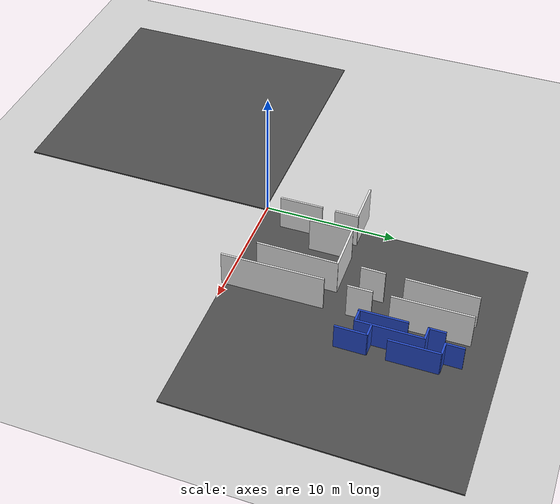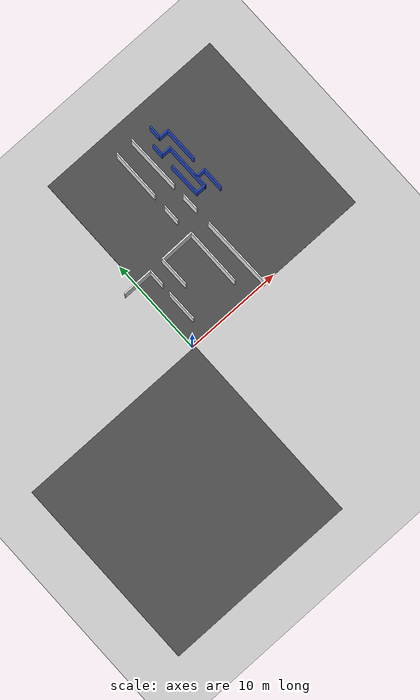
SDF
<sdf version="1.7">
 <world name="default">
  <model name="ground_plane">
   <static>1</static>
   <link name="link">
    <collision name="collision">
     <geometry><plane><normal>0 0 1</normal><size>100 100</size></plane></geometry>
     <surface><friction><ode><mu>100</mu><mu2>50</mu2></ode></friction></surface>
    </collision>
    <visual name="visual">
     <cast_shadows>0</cast_shadows>
     <geometry><plane><normal>0 0 1</normal><size>100 100</size></plane></geometry>
     <material>
      <script><uri>file://media/materials/scripts/gazebo.material</uri><name>Gazebo/Grey</name></script>
     </material>
    </visual>
    <velocity_decay><linear>0</linear><angular>0</angular></velocity_decay>
   </link>
  </model>
  <model name="asphalt_plane">
   <static>1</static>
   <link name="link">
    <collision name="collision"><geometry><box><size>20 20 0.1</size></box></geometry></collision>
    <visual name="visual">
     <cast_shadows>0</cast_shadows>
     <geometry><box><size>20 20 0.1</size></box></geometry>
     <material>
      <script>
       <uri>model://asphalt_plane/materials/scripts</uri>
       <uri>model://asphalt_plane/materials/textures</uri>
       <name>vrc/asphalt</name>
      </script>
     </material>
    </visual>
   </link>
   <pose>-9.73878 -10.1135 0 0 -0 0</pose>
  </model>
  <model name="asphalt_plane_2">
   <static>1</static>
   <link name="link">
    <collision name="collision"><geometry><box><size>20 20 0.1</size></box></geometry></collision>
    <visual name="visual">
     <cast_shadows>0</cast_shadows>
     <geometry><box><size>20 20 0.1</size></box></geometry>
     <material>
      <script>
       <uri>model://asphalt_plane/materials/scripts</uri>
       <uri>model://asphalt_plane/materials/textures</uri>
       <name>vrc/asphalt</name>
      </script>
     </material>
    </visual>
   </link>
   <pose>10.0797 9.93952 0 0 -0 0</pose>
  </model>
  <model name="white_wall1_clone_clone">
   <link name="link">
    <inertial>
     <mass>1</mass>
     <inertia>
      <ixx>0.166667</ixx>
      <ixy>0</ixy>
      <ixz>0</ixz>
      <iyy>0.166667</iyy>
      <iyz>0</iyz>
      <izz>0.166667</izz>
     </inertia>
    </inertial>
    <visual name="visual">
     <geometry><box><size>7.516 0.139088 2.78993</size></box></geometry>
     <material>
      <script><name>Gazebo/White</name><uri>file://media/materials/scripts/gazebo.material</uri></script>
      <shader type="vertex"><normal_map>__default__</normal_map></shader>
      <ambient>1 1 1 1</ambient>
      <diffuse>1 1 1 1</diffuse>
      <specular>0 0 0 1</specular>
      <emissive>0 0 0 1</emissive>
     </material>
    </visual>
    <collision name="collision">
     <geometry><box><size>7.516 0.139088 2.78993</size></box></geometry>
     <surface>
      <friction>
       <ode><mu>1</mu><mu2>1</mu2><fdir1>0 0 0</fdir1><slip1>0</slip1><slip2>0</slip2></ode>
       <torsional>
        <coefficient>1</coefficient>
        <patch_radius>0</patch_radius>
        <surface_radius>0</surface_radius>
        <use_patch_radius>1</use_patch_radius>
        <ode><slip>0</slip></ode>
       </torsional>
      </friction>
      <bounce><restitution_coefficient>0</restitution_coefficient><threshold>1e+06</threshold></bounce>
      <contact>
       <collide_without_contact>0</collide_without_contact>
       <collide_without_contact_bitmask>1</collide_without_contact_bitmask>
       <collide_bitmask>1</collide_bitmask>
       <ode>
        <soft_cfm>0</soft_cfm>
        <soft_erp>0.2</soft_erp>
        <kp>1e+13</kp>
        <kd>1</kd>
        <max_vel>0.01</max_vel>
        <min_depth>0</min_depth>
       </ode>
       <bullet>
        <split_impulse>1</split_impulse>
        <split_impulse_penetration_threshold>-0.01</split_impulse_penetration_threshold>
        <soft_cfm>0</soft_cfm>
        <soft_erp>0.2</soft_erp>
        <kp>1e+13</kp>
        <kd>1</kd>
       </bullet>
      </contact>
     </surface>
    </collision>
   </link>
   <static>1</static>
   <pose>8.6384 3.53143 1.43994 -4e-06 -1e-06 -1.55395</pose>
  </model>
  <model name="white_wall14_clone">
   <link name="link">
    <inertial>
     <mass>1</mass>
     <inertia>
      <ixx>0.166667</ixx>
      <ixy>0</ixy>
      <ixz>0</ixz>
      <iyy>0.166667</iyy>
      <iyz>0</iyz>
      <izz>0.166667</izz>
     </inertia>
    </inertial>
    <visual name="visual">
     <geometry><box><size>5.71848 0.139088 2.78993</size></box></geometry>
     <material>
      <script><name>Gazebo/White</name><uri>file://media/materials/scripts/gazebo.material</uri></script>
      <shader type="vertex"><normal_map>__default__</normal_map></shader>
      <ambient>1 1 1 1</ambient>
      <diffuse>1 1 1 1</diffuse>
      <specular>0 0 0 1</specular>
      <emissive>0 0 0 1</emissive>
     </material>
    </visual>
    <collision name="collision">
     <geometry><box><size>5.71848 0.139088 2.78993</size></box></geometry>
     <surface>
      <friction>
       <ode><mu>1</mu><mu2>1</mu2><fdir1>0 0 0</fdir1><slip1>0</slip1><slip2>0</slip2></ode>
       <torsional>
        <coefficient>1</coefficient>
        <patch_radius>0</patch_radius>
        <surface_radius>0</surface_radius>
        <use_patch_radius>1</use_patch_radius>
        <ode><slip>0</slip></ode>
       </torsional>
      </friction>
      <bounce><restitution_coefficient>0</restitution_coefficient><threshold>1e+06</threshold></bounce>
      <contact>
       <collide_without_contact>0</collide_without_contact>
       <collide_without_contact_bitmask>1</collide_without_contact_bitmask>
       <collide_bitmask>1</collide_bitmask>
       <ode>
        <soft_cfm>0</soft_cfm>
        <soft_erp>0.2</soft_erp>
        <kp>1e+13</kp>
        <kd>1</kd>
        <max_vel>0.01</max_vel>
        <min_depth>0</min_depth>
       </ode>
       <bullet>
        <split_impulse>1</split_impulse>
        <split_impulse_penetration_threshold>-0.01</split_impulse_penetration_threshold>
        <soft_cfm>0</soft_cfm>
        <soft_erp>0.2</soft_erp>
        <kp>1e+13</kp>
        <kd>1</kd>
       </bullet>
      </contact>
     </surface>
    </collision>
   </link>
   <static>1</static>
   <pose>8.48733 14.7914 1.43994 -4e-06 -1e-06 -1.55521</pose>
  </model>
  <model name="white_wall3_clone_clone_1_clone_0_clone_clone">
   <link name="link">
    <inertial>
     <mass>1</mass>
     <inertia>
      <ixx>0.166667</ixx>
      <ixy>0</ixy>
      <ixz>0</ixz>
      <iyy>0.166667</iyy>
      <iyz>0</iyz>
      <izz>0.166667</izz>
     </inertia>
    </inertial>
    <visual name="visual">
     <geometry><box><size>1.77743 0.139088 2.78993</size></box></geometry>
     <material>
      <script><name>Gazebo/White</name><uri>file://media/materials/scripts/gazebo.material</uri></script>
      <shader type="vertex"><normal_map>__default__</normal_map></shader>
      <ambient>1 1 1 1</ambient>
      <diffuse>1 1 1 1</diffuse>
      <specular>0 0 0 1</specular>
      <emissive>0 0 0 1</emissive>
     </material>
    </visual>
    <collision name="collision">
     <geometry><box><size>1.77743 0.139088 2.78993</size></box></geometry>
     <surface>
      <friction>
       <ode><mu>1</mu><mu2>1</mu2><fdir1>0 0 0</fdir1><slip1>0</slip1><slip2>0</slip2></ode>
       <torsional>
        <coefficient>1</coefficient>
        <patch_radius>0</patch_radius>
        <surface_radius>0</surface_radius>
        <use_patch_radius>1</use_patch_radius>
        <ode><slip>0</slip></ode>
       </torsional>
      </friction>
      <bounce><restitution_coefficient>0</restitution_coefficient><threshold>1e+06</threshold></bounce>
      <contact>
       <collide_without_contact>0</collide_without_contact>
       <collide_without_contact_bitmask>1</collide_without_contact_bitmask>
       <collide_bitmask>1</collide_bitmask>
       <ode>
        <soft_cfm>0</soft_cfm>
        <soft_erp>0.2</soft_erp>
        <kp>1e+13</kp>
        <kd>1</kd>
        <max_vel>0.01</max_vel>
        <min_depth>0</min_depth>
       </ode>
       <bullet>
        <split_impulse>1</split_impulse>
        <split_impulse_penetration_threshold>-0.01</split_impulse_penetration_threshold>
        <soft_cfm>0</soft_cfm>
        <soft_erp>0.2</soft_erp>
        <kp>1e+13</kp>
        <kd>1</kd>
       </bullet>
      </contact>
     </surface>
    </collision>
   </link>
   <static>1</static>
   <pose>8.5689 9.81142 1.43995 -4e-06 -1e-06 -1.5551</pose>
  </model>
  <model name="white_wall19_clone_0">
   <link name="link">
    <inertial>
     <mass>1</mass>
     <inertia>
      <ixx>0.166667</ixx>
      <ixy>0</ixy>
      <ixz>0</ixz>
      <iyy>0.166667</iyy>
      <iyz>0</iyz>
      <izz>0.166667</izz>
     </inertia>
    </inertial>
    <visual name="visual">
     <geometry><box><size>5.22248 0.139088 2.78993</size></box></geometry>
     <material>
      <script><name>Gazebo/White</name><uri>file://media/materials/scripts/gazebo.material</uri></script>
      <shader type="vertex"><normal_map>__default__</normal_map></shader>
      <ambient>1 1 1 1</ambient>
      <diffuse>1 1 1 1</diffuse>
      <specular>0 0 0 1</specular>
      <emissive>0 0 0 1</emissive>
     </material>
    </visual>
    <collision name="collision">
     <geometry><box><size>5.22248 0.139088 2.78993</size></box></geometry>
     <surface>
      <friction>
       <ode><mu>1</mu><mu2>1</mu2><fdir1>0 0 0</fdir1><slip1>0</slip1><slip2>0</slip2></ode>
       <torsional>
        <coefficient>1</coefficient>
        <patch_radius>0</patch_radius>
        <surface_radius>0</surface_radius>
        <use_patch_radius>1</use_patch_radius>
        <ode><slip>0</slip></ode>
       </torsional>
      </friction>
      <bounce><restitution_coefficient>0</restitution_coefficient><threshold>1e+06</threshold></bounce>
      <contact>
       <collide_without_contact>0</collide_without_contact>
       <collide_without_contact_bitmask>1</collide_without_contact_bitmask>
       <collide_bitmask>1</collide_bitmask>
       <ode>
        <soft_cfm>0</soft_cfm>
        <soft_erp>0.2</soft_erp>
        <kp>1e+13</kp>
        <kd>1</kd>
        <max_vel>0.01</max_vel>
        <min_depth>0</min_depth>
       </ode>
       <bullet>
        <split_impulse>1</split_impulse>
        <split_impulse_penetration_threshold>-0.01</split_impulse_penetration_threshold>
        <soft_cfm>0</soft_cfm>
        <soft_erp>0.2</soft_erp>
        <kp>1e+13</kp>
        <kd>1</kd>
       </bullet>
      </contact>
     </surface>
    </collision>
   </link>
   <static>1</static>
   <pose>6.59059 14.9958 1.43998 4e-06 1e-06 1.56978</pose>
  </model>
  <model name="white_wall3_clone_clone_2_clone_clone">
   <link name="link">
    <inertial>
     <mass>1</mass>
     <inertia>
      <ixx>0.166667</ixx>
      <ixy>0</ixy>
      <ixz>0</ixz>
      <iyy>0.166667</iyy>
      <iyz>0</iyz>
      <izz>0.166667</izz>
     </inertia>
    </inertial>
    <visual name="visual">
     <geometry><box><size>1.77743 0.139088 2.78993</size></box></geometry>
     <material>
      <script><name>Gazebo/White</name><uri>file://media/materials/scripts/gazebo.material</uri></script>
      <shader type="vertex"><normal_map>__default__</normal_map></shader>
      <ambient>1 1 1 1</ambient>
      <diffuse>1 1 1 1</diffuse>
      <specular>0 0 0 1</specular>
      <emissive>0 0 0 1</emissive>
     </material>
    </visual>
    <collision name="collision">
     <geometry><box><size>1.77743 0.139088 2.78993</size></box></geometry>
     <surface>
      <friction>
       <ode><mu>1</mu><mu2>1</mu2><fdir1>0 0 0</fdir1><slip1>0</slip1><slip2>0</slip2></ode>
       <torsional>
        <coefficient>1</coefficient>
        <patch_radius>0</patch_radius>
        <surface_radius>0</surface_radius>
        <use_patch_radius>1</use_patch_radius>
        <ode><slip>0</slip></ode>
       </torsional>
      </friction>
      <bounce><restitution_coefficient>0</restitution_coefficient><threshold>1e+06</threshold></bounce>
      <contact>
       <collide_without_contact>0</collide_without_contact>
       <collide_without_contact_bitmask>1</collide_without_contact_bitmask>
       <collide_bitmask>1</collide_bitmask>
       <ode>
        <soft_cfm>0</soft_cfm>
        <soft_erp>0.2</soft_erp>
        <kp>1e+13</kp>
        <kd>1</kd>
        <max_vel>0.01</max_vel>
        <min_depth>0</min_depth>
       </ode>
       <bullet>
        <split_impulse>1</split_impulse>
        <split_impulse_penetration_threshold>-0.01</split_impulse_penetration_threshold>
        <soft_cfm>0</soft_cfm>
        <soft_erp>0.2</soft_erp>
        <kp>1e+13</kp>
        <kd>1</kd>
       </bullet>
      </contact>
     </surface>
    </collision>
   </link>
   <static>1</static>
   <pose>6.5769 10.1521 1.43995 4e-06 1e-06 1.56402</pose>
  </model>
  <model name="white_wall2_clone_clone_clone_clone_clone_clone_clone">
   <link name="link">
    <inertial>
     <mass>1</mass>
     <inertia>
      <ixx>0.166667</ixx>
      <ixy>0</ixy>
      <ixz>0</ixz>
      <iyy>0.166667</iyy>
      <iyz>0</iyz>
      <izz>0.166667</izz>
     </inertia>
    </inertial>
    <visual name="visual">
     <geometry><box><size>3.22688 0.139088 2.78993</size></box></geometry>
     <material>
      <script><name>Gazebo/White</name><uri>file://media/materials/scripts/gazebo.material</uri></script>
      <shader type="vertex"><normal_map>__default__</normal_map></shader>
      <ambient>1 1 1 1</ambient>
      <diffuse>1 1 1 1</diffuse>
      <specular>0 0 0 1</specular>
      <emissive>0 0 0 1</emissive>
     </material>
    </visual>
    <collision name="collision">
     <geometry><box><size>3.22688 0.139088 2.78993</size></box></geometry>
     <surface>
      <friction>
       <ode><mu>1</mu><mu2>1</mu2><fdir1>0 0 0</fdir1><slip1>0</slip1><slip2>0</slip2></ode>
       <torsional>
        <coefficient>1</coefficient>
        <patch_radius>0</patch_radius>
        <surface_radius>0</surface_radius>
        <use_patch_radius>1</use_patch_radius>
        <ode><slip>0</slip></ode>
       </torsional>
      </friction>
      <bounce><restitution_coefficient>0</restitution_coefficient><threshold>1e+06</threshold></bounce>
      <contact>
       <collide_without_contact>0</collide_without_contact>
       <collide_without_contact_bitmask>1</collide_without_contact_bitmask>
       <collide_bitmask>1</collide_bitmask>
       <ode>
        <soft_cfm>0</soft_cfm>
        <soft_erp>0.2</soft_erp>
        <kp>1e+13</kp>
        <kd>1</kd>
        <max_vel>0.01</max_vel>
        <min_depth>0</min_depth>
       </ode>
       <bullet>
        <split_impulse>1</split_impulse>
        <split_impulse_penetration_threshold>-0.01</split_impulse_penetration_threshold>
        <soft_cfm>0</soft_cfm>
        <soft_erp>0.2</soft_erp>
        <kp>1e+13</kp>
        <kd>1</kd>
       </bullet>
      </contact>
     </surface>
    </collision>
   </link>
   <static>1</static>
   <pose>0.098009 7.51806 1.43995 -1e-06 4e-06 0.004652</pose>
  </model>
  <model name="white_wall3_clone_clone_2_clone_clone_clone">
   <link name="link">
    <inertial>
     <mass>1</mass>
     <inertia>
      <ixx>0.166667</ixx>
      <ixy>0</ixy>
      <ixz>0</ixz>
      <iyy>0.166667</iyy>
      <iyz>0</iyz>
      <izz>0.166667</izz>
     </inertia>
    </inertial>
    <visual name="visual">
     <geometry><box><size>1.77743 0.139088 2.78993</size></box></geometry>
     <material>
      <script><name>Gazebo/White</name><uri>file://media/materials/scripts/gazebo.material</uri></script>
      <shader type="vertex"><normal_map>__default__</normal_map></shader>
      <ambient>1 1 1 1</ambient>
      <diffuse>1 1 1 1</diffuse>
      <specular>0 0 0 1</specular>
      <emissive>0 0 0 1</emissive>
     </material>
    </visual>
    <collision name="collision">
     <geometry><box><size>1.77743 0.139088 2.78993</size></box></geometry>
     <surface>
      <friction>
       <ode><mu>1</mu><mu2>1</mu2><fdir1>0 0 0</fdir1><slip1>0</slip1><slip2>0</slip2></ode>
       <torsional>
        <coefficient>1</coefficient>
        <patch_radius>0</patch_radius>
        <surface_radius>0</surface_radius>
        <use_patch_radius>1</use_patch_radius>
        <ode><slip>0</slip></ode>
       </torsional>
      </friction>
      <bounce><restitution_coefficient>0</restitution_coefficient><threshold>1e+06</threshold></bounce>
      <contact>
       <collide_without_contact>0</collide_without_contact>
       <collide_without_contact_bitmask>1</collide_without_contact_bitmask>
       <collide_bitmask>1</collide_bitmask>
       <ode>
        <soft_cfm>0</soft_cfm>
        <soft_erp>0.2</soft_erp>
        <kp>1e+13</kp>
        <kd>1</kd>
        <max_vel>0.01</max_vel>
        <min_depth>0</min_depth>
       </ode>
       <bullet>
        <split_impulse>1</split_impulse>
        <split_impulse_penetration_threshold>-0.01</split_impulse_penetration_threshold>
        <soft_cfm>0</soft_cfm>
        <soft_erp>0.2</soft_erp>
        <kp>1e+13</kp>
        <kd>1</kd>
       </bullet>
      </contact>
     </surface>
    </collision>
   </link>
   <static>1</static>
   <pose>1.65799 6.7128 1.43995 4e-06 1e-06 1.56402</pose>
  </model>
  <model name="white_wall2_clone_clone_clone_clone_0">
   <link name="link">
    <inertial>
     <mass>1</mass>
     <inertia>
      <ixx>0.166667</ixx>
      <ixy>0</ixy>
      <ixz>0</ixz>
      <iyy>0.166667</iyy>
      <iyz>0</iyz>
      <izz>0.166667</izz>
     </inertia>
    </inertial>
    <visual name="visual">
     <geometry><box><size>3.22688 0.139088 2.78993</size></box></geometry>
     <material>
      <script><name>Gazebo/White</name><uri>file://media/materials/scripts/gazebo.material</uri></script>
      <shader type="vertex"><normal_map>__default__</normal_map></shader>
      <ambient>1 1 1 1</ambient>
      <diffuse>1 1 1 1</diffuse>
      <specular>0 0 0 1</specular>
      <emissive>0 0 0 1</emissive>
     </material>
    </visual>
    <collision name="collision">
     <geometry><box><size>3.22688 0.139088 2.78993</size></box></geometry>
     <surface>
      <friction>
       <ode><mu>1</mu><mu2>1</mu2><fdir1>0 0 0</fdir1><slip1>0</slip1><slip2>0</slip2></ode>
       <torsional>
        <coefficient>1</coefficient>
        <patch_radius>0</patch_radius>
        <surface_radius>0</surface_radius>
        <use_patch_radius>1</use_patch_radius>
        <ode><slip>0</slip></ode>
       </torsional>
      </friction>
      <bounce><restitution_coefficient>0</restitution_coefficient><threshold>1e+06</threshold></bounce>
      <contact>
       <collide_without_contact>0</collide_without_contact>
       <collide_without_contact_bitmask>1</collide_without_contact_bitmask>
       <collide_bitmask>1</collide_bitmask>
       <ode>
        <soft_cfm>0</soft_cfm>
        <soft_erp>0.2</soft_erp>
        <kp>1e+13</kp>
        <kd>1</kd>
        <max_vel>0.01</max_vel>
        <min_depth>0</min_depth>
       </ode>
       <bullet>
        <split_impulse>1</split_impulse>
        <split_impulse_penetration_threshold>-0.01</split_impulse_penetration_threshold>
        <soft_cfm>0</soft_cfm>
        <soft_erp>0.2</soft_erp>
        <kp>1e+13</kp>
        <kd>1</kd>
       </bullet>
      </contact>
     </surface>
    </collision>
   </link>
   <static>1</static>
   <pose>1.63251 3.24781 1.43995 4e-06 1e-06 1.57814</pose>
  </model>
  <model name="white_wall2_clone_clone_clone_clone_0_clone">
   <link name="link">
    <inertial>
     <mass>1</mass>
     <inertia>
      <ixx>0.166667</ixx>
      <ixy>0</ixy>
      <ixz>0</ixz>
      <iyy>0.166667</iyy>
      <iyz>0</iyz>
      <izz>0.166667</izz>
     </inertia>
    </inertial>
    <visual name="visual">
     <geometry><box><size>3.22688 0.139088 2.78993</size></box></geometry>
     <material>
      <script><name>Gazebo/White</name><uri>file://media/materials/scripts/gazebo.material</uri></script>
      <shader type="vertex"><normal_map>__default__</normal_map></shader>
      <ambient>1 1 1 1</ambient>
      <diffuse>1 1 1 1</diffuse>
      <specular>0 0 0 1</specular>
      <emissive>0 0 0 1</emissive>
     </material>
    </visual>
    <collision name="collision">
     <geometry><box><size>3.22688 0.139088 2.78993</size></box></geometry>
     <surface>
      <friction>
       <ode><mu>1</mu><mu2>1</mu2><fdir1>0 0 0</fdir1><slip1>0</slip1><slip2>0</slip2></ode>
       <torsional>
        <coefficient>1</coefficient>
        <patch_radius>0</patch_radius>
        <surface_radius>0</surface_radius>
        <use_patch_radius>1</use_patch_radius>
        <ode><slip>0</slip></ode>
       </torsional>
      </friction>
      <bounce><restitution_coefficient>0</restitution_coefficient><threshold>1e+06</threshold></bounce>
      <contact>
       <collide_without_contact>0</collide_without_contact>
       <collide_without_contact_bitmask>1</collide_without_contact_bitmask>
       <collide_bitmask>1</collide_bitmask>
       <ode>
        <soft_cfm>0</soft_cfm>
        <soft_erp>0.2</soft_erp>
        <kp>1e+13</kp>
        <kd>1</kd>
        <max_vel>0.01</max_vel>
        <min_depth>0</min_depth>
       </ode>
       <bullet>
        <split_impulse>1</split_impulse>
        <split_impulse_penetration_threshold>-0.01</split_impulse_penetration_threshold>
        <soft_cfm>0</soft_cfm>
        <soft_erp>0.2</soft_erp>
        <kp>1e+13</kp>
        <kd>1</kd>
       </bullet>
      </contact>
     </surface>
    </collision>
   </link>
   <static>1</static>
   <pose>3.21284 6.04856 1.43995 4e-06 1e-06 1.57814</pose>
  </model>
  <model name="white_wall6_clone_clone_clone_0_clone_0">
   <link name="link">
    <inertial>
     <mass>1</mass>
     <inertia>
      <ixx>0.166667</ixx>
      <ixy>0</ixy>
      <ixz>0</ixz>
      <iyy>0.166667</iyy>
      <iyz>0</iyz>
      <izz>0.166667</izz>
     </inertia>
    </inertial>
    <visual name="visual">
     <geometry><box><size>6.01508 0.139088 2.78993</size></box></geometry>
     <material>
      <script><name>Gazebo/White</name><uri>file://media/materials/scripts/gazebo.material</uri></script>
      <shader type="vertex"><normal_map>__default__</normal_map></shader>
      <ambient>1 1 1 1</ambient>
      <diffuse>1 1 1 1</diffuse>
      <specular>0 0 0 1</specular>
      <emissive>0 0 0 1</emissive>
     </material>
    </visual>
    <collision name="collision">
     <geometry><box><size>6.01508 0.139088 2.78993</size></box></geometry>
     <surface>
      <friction>
       <ode><mu>1</mu><mu2>1</mu2><fdir1>0 0 0</fdir1><slip1>0</slip1><slip2>0</slip2></ode>
       <torsional>
        <coefficient>1</coefficient>
        <patch_radius>0</patch_radius>
        <surface_radius>0</surface_radius>
        <use_patch_radius>1</use_patch_radius>
        <ode><slip>0</slip></ode>
       </torsional>
      </friction>
      <bounce><restitution_coefficient>0</restitution_coefficient><threshold>1e+06</threshold></bounce>
      <contact>
       <collide_without_contact>0</collide_without_contact>
       <collide_without_contact_bitmask>1</collide_without_contact_bitmask>
       <collide_bitmask>1</collide_bitmask>
       <ode>
        <soft_cfm>0</soft_cfm>
        <soft_erp>0.2</soft_erp>
        <kp>1e+13</kp>
        <kd>1</kd>
        <max_vel>0.01</max_vel>
        <min_depth>0</min_depth>
       </ode>
       <bullet>
        <split_impulse>1</split_impulse>
        <split_impulse_penetration_threshold>-0.01</split_impulse_penetration_threshold>
        <soft_cfm>0</soft_cfm>
        <soft_erp>0.2</soft_erp>
        <kp>1e+13</kp>
        <kd>1</kd>
       </bullet>
      </contact>
     </surface>
    </collision>
   </link>
   <static>1</static>
   <pose>6.752 4.70157 1.43998 4e-06 1e-06 1.56978</pose>
  </model>
  <model name="white_wall26">
   <link name="link">
    <inertial>
     <mass>1</mass>
     <inertia>
      <ixx>0.166667</ixx>
      <ixy>0</ixy>
      <ixz>0</ixz>
      <iyy>0.166667</iyy>
      <iyz>0</iyz>
      <izz>0.166667</izz>
     </inertia>
    </inertial>
    <visual name="visual">
     <geometry><box><size>3.67675 0.139088 2.78993</size></box></geometry>
     <material>
      <script><name>Gazebo/White</name><uri>file://media/materials/scripts/gazebo.material</uri></script>
      <shader type="vertex"><normal_map>__default__</normal_map></shader>
      <ambient>1 1 1 1</ambient>
      <diffuse>1 1 1 1</diffuse>
      <specular>0 0 0 1</specular>
      <emissive>0 0 0 1</emissive>
     </material>
    </visual>
    <collision name="collision">
     <geometry><box><size>3.67675 0.139088 2.78993</size></box></geometry>
     <surface>
      <friction>
       <ode><mu>1</mu><mu2>1</mu2><fdir1>0 0 0</fdir1><slip1>0</slip1><slip2>0</slip2></ode>
       <torsional>
        <coefficient>1</coefficient>
        <patch_radius>0</patch_radius>
        <surface_radius>0</surface_radius>
        <use_patch_radius>1</use_patch_radius>
        <ode><slip>0</slip></ode>
       </torsional>
      </friction>
      <bounce><restitution_coefficient>0</restitution_coefficient><threshold>1e+06</threshold></bounce>
      <contact>
       <collide_without_contact>0</collide_without_contact>
       <collide_without_contact_bitmask>1</collide_without_contact_bitmask>
       <collide_bitmask>1</collide_bitmask>
       <ode>
        <soft_cfm>0</soft_cfm>
        <soft_erp>0.2</soft_erp>
        <kp>1e+13</kp>
        <kd>1</kd>
        <max_vel>0.01</max_vel>
        <min_depth>0</min_depth>
       </ode>
       <bullet>
        <split_impulse>1</split_impulse>
        <split_impulse_penetration_threshold>-0.01</split_impulse_penetration_threshold>
        <soft_cfm>0</soft_cfm>
        <soft_erp>0.2</soft_erp>
        <kp>1e+13</kp>
        <kd>1</kd>
       </bullet>
      </contact>
     </surface>
    </collision>
   </link>
   <static>1</static>
   <pose>4.98186 7.62178 1.43999 1e-06 -4e-06 -3.1252</pose>
  </model>
  <model name="blue_wall_2_0_clone_0_clone_clone_clone_clone">
   <link name="link">
    <inertial>
     <mass>1.23974</mass>
     <inertia>
      <ixx>1.75708</ixx>
      <ixy>0</ixy>
      <ixz>0</ixz>
      <iyy>0.935051</iyy>
      <iyz>0</iyz>
      <izz>0.826375</izz>
     </inertia>
    </inertial>
    <visual name="visual">
     <geometry><box><size>0.145074 2.28839 3.00495</size></box></geometry>
     <material>
      <script><name>Gazebo/Blue</name><uri>file://media/materials/scripts/gazebo.material</uri></script>
      <shader type="vertex"><normal_map>__default__</normal_map></shader>
      <ambient>0 0 1 1</ambient>
      <diffuse>0 0 1 1</diffuse>
      <specular>0.1 0.1 0.1 1</specular>
      <emissive>0 0 0 1</emissive>
     </material>
    </visual>
    <collision name="collision">
     <geometry><box><size>0.145074 2.28839 3.00495</size></box></geometry>
     <surface>
      <friction>
       <ode><mu>1</mu><mu2>1</mu2><fdir1>0 0 0</fdir1><slip1>0</slip1><slip2>0</slip2></ode>
       <torsional>
        <coefficient>1</coefficient>
        <patch_radius>0</patch_radius>
        <surface_radius>0</surface_radius>
        <use_patch_radius>1</use_patch_radius>
        <ode><slip>0</slip></ode>
       </torsional>
      </friction>
      <bounce><restitution_coefficient>0</restitution_coefficient><threshold>1e+06</threshold></bounce>
      <contact>
       <collide_without_contact>0</collide_without_contact>
       <collide_without_contact_bitmask>1</collide_without_contact_bitmask>
       <collide_bitmask>1</collide_bitmask>
       <ode>
        <soft_cfm>0</soft_cfm>
        <soft_erp>0.2</soft_erp>
        <kp>1e+13</kp>
        <kd>1</kd>
        <max_vel>0.01</max_vel>
        <min_depth>0</min_depth>
       </ode>
       <bullet>
        <split_impulse>1</split_impulse>
        <split_impulse_penetration_threshold>-0.01</split_impulse_penetration_threshold>
        <soft_cfm>0</soft_cfm>
        <soft_erp>0.2</soft_erp>
        <kp>1e+13</kp>
        <kd>1</kd>
       </bullet>
      </contact>
     </surface>
    </collision>
   </link>
   <static>1</static>
   <pose>11.638 10.1483 0.5 0 -0 0</pose>
  </model>
  <model name="blue_wall_11_clone_clone">
   <link name="link">
    <inertial>
     <mass>1.23974</mass>
     <inertia>
      <ixx>1.75708</ixx>
      <ixy>0</ixy>
      <ixz>0</ixz>
      <iyy>0.935051</iyy>
      <iyz>0</iyz>
      <izz>0.826375</izz>
     </inertia>
    </inertial>
    <visual name="visual">
     <geometry><box><size>0.145074 3.48332 3.00495</size></box></geometry>
     <material>
      <script><name>Gazebo/Blue</name><uri>file://media/materials/scripts/gazebo.material</uri></script>
      <shader type="vertex"><normal_map>__default__</normal_map></shader>
      <ambient>0 0 1 1</ambient>
      <diffuse>0 0 1 1</diffuse>
      <specular>0.1 0.1 0.1 1</specular>
      <emissive>0 0 0 1</emissive>
     </material>
    </visual>
    <collision name="collision">
     <geometry><box><size>0.145074 3.48332 3.00495</size></box></geometry>
     <surface>
      <friction>
       <ode><mu>1</mu><mu2>1</mu2><fdir1>0 0 0</fdir1><slip1>0</slip1><slip2>0</slip2></ode>
       <torsional>
        <coefficient>1</coefficient>
        <patch_radius>0</patch_radius>
        <surface_radius>0</surface_radius>
        <use_patch_radius>1</use_patch_radius>
        <ode><slip>0</slip></ode>
       </torsional>
      </friction>
      <bounce><restitution_coefficient>0</restitution_coefficient><threshold>1e+06</threshold></bounce>
      <contact>
       <collide_without_contact>0</collide_without_contact>
       <collide_without_contact_bitmask>1</collide_without_contact_bitmask>
       <collide_bitmask>1</collide_bitmask>
       <ode>
        <soft_cfm>0</soft_cfm>
        <soft_erp>0.2</soft_erp>
        <kp>1e+13</kp>
        <kd>1</kd>
        <max_vel>0.01</max_vel>
        <min_depth>0</min_depth>
       </ode>
       <bullet>
        <split_impulse>1</split_impulse>
        <split_impulse_penetration_threshold>-0.01</split_impulse_penetration_threshold>
        <soft_cfm>0</soft_cfm>
        <soft_erp>0.2</soft_erp>
        <kp>1e+13</kp>
        <kd>1</kd>
       </bullet>
      </contact>
     </surface>
    </collision>
   </link>
   <static>1</static>
   <pose>9.66624 11.8083 0.5 0 -0 0.016458</pose>
  </model>
  <model name="blue_wall_201">
   <link name="link">
    <inertial>
     <mass>1.23974</mass>
     <inertia>
      <ixx>1.75708</ixx>
      <ixy>0</ixy>
      <ixz>0</ixz>
      <iyy>0.935051</iyy>
      <iyz>0</iyz>
      <izz>0.826375</izz>
     </inertia>
    </inertial>
    <visual name="visual">
     <geometry><box><size>0.145074 1.26663 3.00495</size></box></geometry>
     <material>
      <script><name>Gazebo/Blue</name><uri>file://media/materials/scripts/gazebo.material</uri></script>
      <shader type="vertex"><normal_map>__default__</normal_map></shader>
      <ambient>0 0 1 1</ambient>
      <diffuse>0 0 1 1</diffuse>
      <specular>0.1 0.1 0.1 1</specular>
      <emissive>0 0 0 1</emissive>
     </material>
    </visual>
    <collision name="collision">
     <geometry><box><size>0.145074 1.26663 3.00495</size></box></geometry>
     <surface>
      <friction>
       <ode><mu>1</mu><mu2>1</mu2><fdir1>0 0 0</fdir1><slip1>0</slip1><slip2>0</slip2></ode>
       <torsional>
        <coefficient>1</coefficient>
        <patch_radius>0</patch_radius>
        <surface_radius>0</surface_radius>
        <use_patch_radius>1</use_patch_radius>
        <ode><slip>0</slip></ode>
       </torsional>
      </friction>
      <bounce><restitution_coefficient>0</restitution_coefficient><threshold>1e+06</threshold></bounce>
      <contact>
       <collide_without_contact>0</collide_without_contact>
       <collide_without_contact_bitmask>1</collide_without_contact_bitmask>
       <collide_bitmask>1</collide_bitmask>
       <ode>
        <soft_cfm>0</soft_cfm>
        <soft_erp>0.2</soft_erp>
        <kp>1e+13</kp>
        <kd>1</kd>
        <max_vel>0.01</max_vel>
        <min_depth>0</min_depth>
       </ode>
       <bullet>
        <split_impulse>1</split_impulse>
        <split_impulse_penetration_threshold>-0.01</split_impulse_penetration_threshold>
        <soft_cfm>0</soft_cfm>
        <soft_erp>0.2</soft_erp>
        <kp>1e+13</kp>
        <kd>1</kd>
       </bullet>
      </contact>
     </surface>
    </collision>
   </link>
   <static>1</static>
   <pose>9.6667 15.4675 0.5 0 -0 0</pose>
  </model>
  <model name="blue_wall_1_01">
   <link name="link">
    <inertial>
     <mass>1.23974</mass>
     <inertia>
      <ixx>1.75708</ixx>
      <ixy>0</ixy>
      <ixz>0</ixz>
      <iyy>0.935051</iyy>
      <iyz>0</iyz>
      <izz>0.826375</izz>
     </inertia>
    </inertial>
    <visual name="visual">
     <geometry><box><size>0.145074 4.87759 3.00495</size></box></geometry>
     <material>
      <script><name>Gazebo/Blue</name><uri>file://media/materials/scripts/gazebo.material</uri></script>
      <shader type="vertex"><normal_map>__default__</normal_map></shader>
      <ambient>0 0 1 1</ambient>
      <diffuse>0 0 1 1</diffuse>
      <specular>0.1 0.1 0.1 1</specular>
      <emissive>0 0 0 1</emissive>
     </material>
    </visual>
    <collision name="collision">
     <geometry><box><size>0.145074 4.87759 3.00495</size></box></geometry>
     <surface>
      <friction>
       <ode><mu>1</mu><mu2>1</mu2><fdir1>0 0 0</fdir1><slip1>0</slip1><slip2>0</slip2></ode>
       <torsional>
        <coefficient>1</coefficient>
        <patch_radius>0</patch_radius>
        <surface_radius>0</surface_radius>
        <use_patch_radius>1</use_patch_radius>
        <ode><slip>0</slip></ode>
       </torsional>
      </friction>
      <bounce><restitution_coefficient>0</restitution_coefficient><threshold>1e+06</threshold></bounce>
      <contact>
       <collide_without_contact>0</collide_without_contact>
       <collide_without_contact_bitmask>1</collide_without_contact_bitmask>
       <collide_bitmask>1</collide_bitmask>
       <ode>
        <soft_cfm>0</soft_cfm>
        <soft_erp>0.2</soft_erp>
        <kp>1e+13</kp>
        <kd>1</kd>
        <max_vel>0.01</max_vel>
        <min_depth>0</min_depth>
       </ode>
       <bullet>
        <split_impulse>1</split_impulse>
        <split_impulse_penetration_threshold>-0.01</split_impulse_penetration_threshold>
        <soft_cfm>0</soft_cfm>
        <soft_erp>0.2</soft_erp>
        <kp>1e+13</kp>
        <kd>1</kd>
       </bullet>
      </contact>
     </surface>
    </collision>
   </link>
   <static>1</static>
   <pose>10.6527 12.5195 0.5 0 -0 0.007046</pose>
  </model>
  <model name="blue_wall_201_clone">
   <link name="link">
    <inertial>
     <mass>1.23974</mass>
     <inertia>
      <ixx>1.75708</ixx>
      <ixy>0</ixy>
      <ixz>0</ixz>
      <iyy>0.935051</iyy>
      <iyz>0</iyz>
      <izz>0.826375</izz>
     </inertia>
    </inertial>
    <visual name="visual">
     <geometry><box><size>0.145074 1.26663 3.00495</size></box></geometry>
     <material>
      <script><name>Gazebo/Blue</name><uri>file://media/materials/scripts/gazebo.material</uri></script>
      <shader type="vertex"><normal_map>__default__</normal_map></shader>
      <ambient>0 0 1 1</ambient>
      <diffuse>0 0 1 1</diffuse>
      <specular>0.1 0.1 0.1 1</specular>
      <emissive>0 0 0 1</emissive>
     </material>
    </visual>
    <collision name="collision">
     <geometry><box><size>0.145074 1.26663 3.00495</size></box></geometry>
     <surface>
      <friction>
       <ode><mu>1</mu><mu2>1</mu2><fdir1>0 0 0</fdir1><slip1>0</slip1><slip2>0</slip2></ode>
       <torsional>
        <coefficient>1</coefficient>
        <patch_radius>0</patch_radius>
        <surface_radius>0</surface_radius>
        <use_patch_radius>1</use_patch_radius>
        <ode><slip>0</slip></ode>
       </torsional>
      </friction>
      <bounce><restitution_coefficient>0</restitution_coefficient><threshold>1e+06</threshold></bounce>
      <contact>
       <collide_without_contact>0</collide_without_contact>
       <collide_without_contact_bitmask>1</collide_without_contact_bitmask>
       <collide_bitmask>1</collide_bitmask>
       <ode>
        <soft_cfm>0</soft_cfm>
        <soft_erp>0.2</soft_erp>
        <kp>1e+13</kp>
        <kd>1</kd>
        <max_vel>0.01</max_vel>
        <min_depth>0</min_depth>
       </ode>
       <bullet>
        <split_impulse>1</split_impulse>
        <split_impulse_penetration_threshold>-0.01</split_impulse_penetration_threshold>
        <soft_cfm>0</soft_cfm>
        <soft_erp>0.2</soft_erp>
        <kp>1e+13</kp>
        <kd>1</kd>
       </bullet>
      </contact>
     </surface>
    </collision>
   </link>
   <static>1</static>
   <pose>10.5898 16.9335 0.5 0 -0 0</pose>
  </model>
  <model name="blue_wall_11_clone_clone_clone1">
   <link name="link">
    <inertial>
     <mass>1.23974</mass>
     <inertia>
      <ixx>1.75708</ixx>
      <ixy>0</ixy>
      <ixz>0</ixz>
      <iyy>0.935051</iyy>
      <iyz>0</iyz>
      <izz>0.826375</izz>
     </inertia>
    </inertial>
    <visual name="visual">
     <geometry><box><size>0.145074 3.60254 3.00495</size></box></geometry>
     <material>
      <script><name>Gazebo/Blue</name><uri>file://media/materials/scripts/gazebo.material</uri></script>
      <shader type="vertex"><normal_map>__default__</normal_map></shader>
      <ambient>0 0 1 1</ambient>
      <diffuse>0 0 1 1</diffuse>
      <specular>0.1 0.1 0.1 1</specular>
      <emissive>0 0 0 1</emissive>
     </material>
    </visual>
    <collision name="collision">
     <geometry><box><size>0.145074 3.60254 3.00495</size></box></geometry>
     <surface>
      <friction>
       <ode><mu>1</mu><mu2>1</mu2><fdir1>0 0 0</fdir1><slip1>0</slip1><slip2>0</slip2></ode>
       <torsional>
        <coefficient>1</coefficient>
        <patch_radius>0</patch_radius>
        <surface_radius>0</surface_radius>
        <use_patch_radius>1</use_patch_radius>
        <ode><slip>0</slip></ode>
       </torsional>
      </friction>
      <bounce><restitution_coefficient>0</restitution_coefficient><threshold>1e+06</threshold></bounce>
      <contact>
       <collide_without_contact>0</collide_without_contact>
       <collide_without_contact_bitmask>1</collide_without_contact_bitmask>
       <collide_bitmask>1</collide_bitmask>
       <ode>
        <soft_cfm>0</soft_cfm>
        <soft_erp>0.2</soft_erp>
        <kp>1e+13</kp>
        <kd>1</kd>
        <max_vel>0.01</max_vel>
        <min_depth>0</min_depth>
       </ode>
       <bullet>
        <split_impulse>1</split_impulse>
        <split_impulse_penetration_threshold>-0.01</split_impulse_penetration_threshold>
        <soft_cfm>0</soft_cfm>
        <soft_erp>0.2</soft_erp>
        <kp>1e+13</kp>
        <kd>1</kd>
       </bullet>
      </contact>
     </surface>
    </collision>
   </link>
   <static>1</static>
   <pose>11.5754 14.4351 0.5 0 -0 0.009023</pose>
  </model>
  <model name="blue_wall_161">
   <link name="link">
    <inertial>
     <mass>0.958307</mass>
     <inertia>
      <ixx>0.810551</ixx>
      <ixy>0</ixy>
      <ixz>0</ixz>
      <iyy>0.722785</iyy>
      <iyz>0</iyz>
      <izz>0.0911277</izz>
     </inertia>
    </inertial>
    <visual name="visual">
     <geometry><box><size>0.145074 1.05833 3.00495</size></box></geometry>
     <material>
      <script><name>Gazebo/Blue</name><uri>file://media/materials/scripts/gazebo.material</uri></script>
      <shader type="vertex"><normal_map>__default__</normal_map></shader>
      <ambient>0 0 1 1</ambient>
      <diffuse>0 0 1 1</diffuse>
      <specular>0.1 0.1 0.1 1</specular>
      <emissive>0 0 0 1</emissive>
     </material>
    </visual>
    <collision name="collision">
     <geometry><box><size>0.145074 1.05833 3.00495</size></box></geometry>
     <surface>
      <friction>
       <ode><mu>1</mu><mu2>1</mu2><fdir1>0 0 0</fdir1><slip1>0</slip1><slip2>0</slip2></ode>
       <torsional>
        <coefficient>1</coefficient>
        <patch_radius>0</patch_radius>
        <surface_radius>0</surface_radius>
        <use_patch_radius>1</use_patch_radius>
        <ode><slip>0</slip></ode>
       </torsional>
      </friction>
      <bounce><restitution_coefficient>0</restitution_coefficient><threshold>1e+06</threshold></bounce>
      <contact>
       <collide_without_contact>0</collide_without_contact>
       <collide_without_contact_bitmask>1</collide_without_contact_bitmask>
       <collide_bitmask>1</collide_bitmask>
       <ode>
        <soft_cfm>0</soft_cfm>
        <soft_erp>0.2</soft_erp>
        <kp>1e+13</kp>
        <kd>1</kd>
        <max_vel>0.01</max_vel>
        <min_depth>0</min_depth>
       </ode>
       <bullet>
        <split_impulse>1</split_impulse>
        <split_impulse_penetration_threshold>-0.01</split_impulse_penetration_threshold>
        <soft_cfm>0</soft_cfm>
        <soft_erp>0.2</soft_erp>
        <kp>1e+13</kp>
        <kd>1</kd>
       </bullet>
      </contact>
     </surface>
    </collision>
   </link>
   <static>1</static>
   <pose>10.1776 10.1596 0.5 0 -0 1.55679</pose>
  </model>
  <model name="blue_wall_161_clone">
   <link name="link">
    <inertial>
     <mass>0.958307</mass>
     <inertia>
      <ixx>0.810551</ixx>
      <ixy>0</ixy>
      <ixz>0</ixz>
      <iyy>0.722785</iyy>
      <iyz>0</iyz>
      <izz>0.0911277</izz>
     </inertia>
    </inertial>
    <visual name="visual">
     <geometry><box><size>0.145074 1.05833 3.00495</size></box></geometry>
     <material>
      <script><name>Gazebo/Blue</name><uri>file://media/materials/scripts/gazebo.material</uri></script>
      <shader type="vertex"><normal_map>__default__</normal_map></shader>
      <ambient>0 0 1 1</ambient>
      <diffuse>0 0 1 1</diffuse>
      <specular>0.1 0.1 0.1 1</specular>
      <emissive>0 0 0 1</emissive>
     </material>
    </visual>
    <collision name="collision">
     <geometry><box><size>0.145074 1.05833 3.00495</size></box></geometry>
     <surface>
      <friction>
       <ode><mu>1</mu><mu2>1</mu2><fdir1>0 0 0</fdir1><slip1>0</slip1><slip2>0</slip2></ode>
       <torsional>
        <coefficient>1</coefficient>
        <patch_radius>0</patch_radius>
        <surface_radius>0</surface_radius>
        <use_patch_radius>1</use_patch_radius>
        <ode><slip>0</slip></ode>
       </torsional>
      </friction>
      <bounce><restitution_coefficient>0</restitution_coefficient><threshold>1e+06</threshold></bounce>
      <contact>
       <collide_without_contact>0</collide_without_contact>
       <collide_without_contact_bitmask>1</collide_without_contact_bitmask>
       <collide_bitmask>1</collide_bitmask>
       <ode>
        <soft_cfm>0</soft_cfm>
        <soft_erp>0.2</soft_erp>
        <kp>1e+13</kp>
        <kd>1</kd>
        <max_vel>0.01</max_vel>
        <min_depth>0</min_depth>
       </ode>
       <bullet>
        <split_impulse>1</split_impulse>
        <split_impulse_penetration_threshold>-0.01</split_impulse_penetration_threshold>
        <soft_cfm>0</soft_cfm>
        <soft_erp>0.2</soft_erp>
        <kp>1e+13</kp>
        <kd>1</kd>
       </bullet>
      </contact>
     </surface>
    </collision>
   </link>
   <static>1</static>
   <pose>11.1758 11.2883 0.5 0 -0 1.55679</pose>
  </model>
  <model name="blue_wall_161_clone_0">
   <link name="link">
    <inertial>
     <mass>0.958307</mass>
     <inertia>
      <ixx>0.810551</ixx>
      <ixy>0</ixy>
      <ixz>0</ixz>
      <iyy>0.722785</iyy>
      <iyz>0</iyz>
      <izz>0.0911277</izz>
     </inertia>
    </inertial>
    <visual name="visual">
     <geometry><box><size>0.145074 1.05833 3.00495</size></box></geometry>
     <material>
      <script><name>Gazebo/Blue</name><uri>file://media/materials/scripts/gazebo.material</uri></script>
      <shader type="vertex"><normal_map>__default__</normal_map></shader>
      <ambient>0 0 1 1</ambient>
      <diffuse>0 0 1 1</diffuse>
      <specular>0.1 0.1 0.1 1</specular>
      <emissive>0 0 0 1</emissive>
     </material>
    </visual>
    <collision name="collision">
     <geometry><box><size>0.145074 1.05833 3.00495</size></box></geometry>
     <surface>
      <friction>
       <ode><mu>1</mu><mu2>1</mu2><fdir1>0 0 0</fdir1><slip1>0</slip1><slip2>0</slip2></ode>
       <torsional>
        <coefficient>1</coefficient>
        <patch_radius>0</patch_radius>
        <surface_radius>0</surface_radius>
        <use_patch_radius>1</use_patch_radius>
        <ode><slip>0</slip></ode>
       </torsional>
      </friction>
      <bounce><restitution_coefficient>0</restitution_coefficient><threshold>1e+06</threshold></bounce>
      <contact>
       <collide_without_contact>0</collide_without_contact>
       <collide_without_contact_bitmask>1</collide_without_contact_bitmask>
       <collide_bitmask>1</collide_bitmask>
       <ode>
        <soft_cfm>0</soft_cfm>
        <soft_erp>0.2</soft_erp>
        <kp>1e+13</kp>
        <kd>1</kd>
        <max_vel>0.01</max_vel>
        <min_depth>0</min_depth>
       </ode>
       <bullet>
        <split_impulse>1</split_impulse>
        <split_impulse_penetration_threshold>-0.01</split_impulse_penetration_threshold>
        <soft_cfm>0</soft_cfm>
        <soft_erp>0.2</soft_erp>
        <kp>1e+13</kp>
        <kd>1</kd>
       </bullet>
      </contact>
     </surface>
    </collision>
   </link>
   <static>1</static>
   <pose>10.1682 14.8961 0.5 0 -0 1.55679</pose>
  </model>
  <model name="blue_wall_161_clone_1">
   <link name="link">
    <inertial>
     <mass>0.958307</mass>
     <inertia>
      <ixx>0.810551</ixx>
      <ixy>0</ixy>
      <ixz>0</ixz>
      <iyy>0.722785</iyy>
      <iyz>0</iyz>
      <izz>0.0911277</izz>
     </inertia>
    </inertial>
    <visual name="visual">
     <geometry><box><size>0.145074 1.05833 3.00495</size></box></geometry>
     <material>
      <script><name>Gazebo/Blue</name><uri>file://media/materials/scripts/gazebo.material</uri></script>
      <shader type="vertex"><normal_map>__default__</normal_map></shader>
      <ambient>0 0 1 1</ambient>
      <diffuse>0 0 1 1</diffuse>
      <specular>0.1 0.1 0.1 1</specular>
      <emissive>0 0 0 1</emissive>
     </material>
    </visual>
    <collision name="collision">
     <geometry><box><size>0.145074 1.05833 3.00495</size></box></geometry>
     <surface>
      <friction>
       <ode><mu>1</mu><mu2>1</mu2><fdir1>0 0 0</fdir1><slip1>0</slip1><slip2>0</slip2></ode>
       <torsional>
        <coefficient>1</coefficient>
        <patch_radius>0</patch_radius>
        <surface_radius>0</surface_radius>
        <use_patch_radius>1</use_patch_radius>
        <ode><slip>0</slip></ode>
       </torsional>
      </friction>
      <bounce><restitution_coefficient>0</restitution_coefficient><threshold>1e+06</threshold></bounce>
      <contact>
       <collide_without_contact>0</collide_without_contact>
       <collide_without_contact_bitmask>1</collide_without_contact_bitmask>
       <collide_bitmask>1</collide_bitmask>
       <ode>
        <soft_cfm>0</soft_cfm>
        <soft_erp>0.2</soft_erp>
        <kp>1e+13</kp>
        <kd>1</kd>
        <max_vel>0.01</max_vel>
        <min_depth>0</min_depth>
       </ode>
       <bullet>
        <split_impulse>1</split_impulse>
        <split_impulse_penetration_threshold>-0.01</split_impulse_penetration_threshold>
        <soft_cfm>0</soft_cfm>
        <soft_erp>0.2</soft_erp>
        <kp>1e+13</kp>
        <kd>1</kd>
       </bullet>
      </contact>
     </surface>
    </collision>
   </link>
   <static>1</static>
   <pose>11.049 16.2294 0.5 0 -0 1.55679</pose>
  </model>
 </world>
</sdf>
